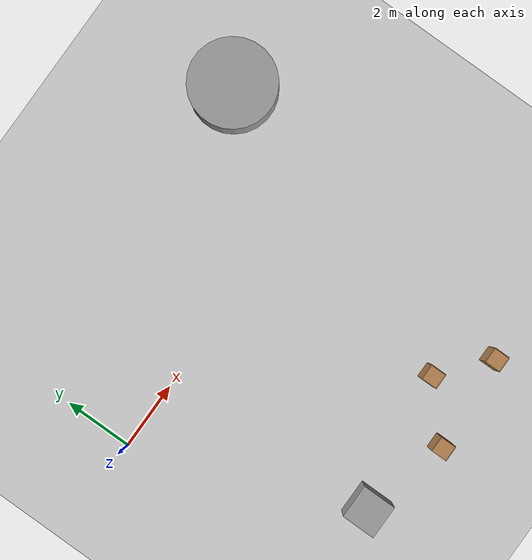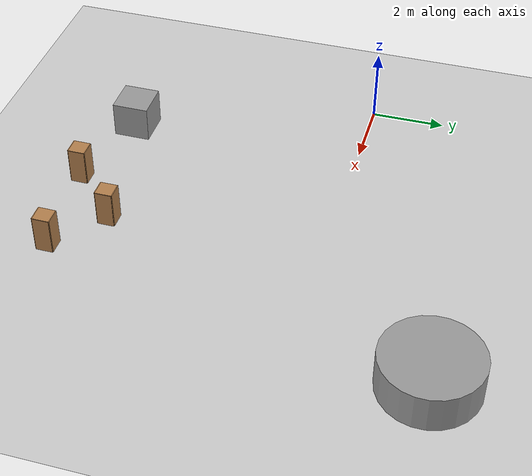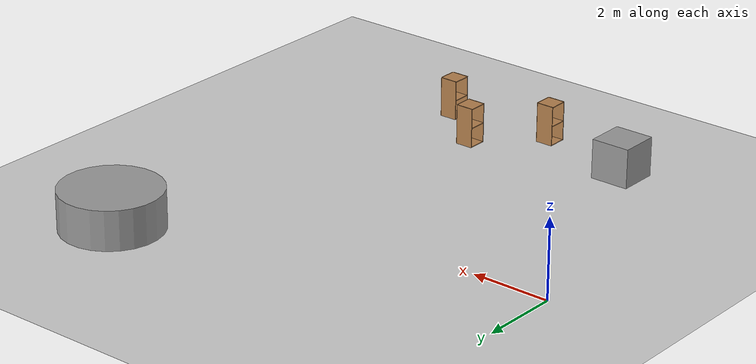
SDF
<sdf version="1.7">
 <world name="default">
  <model name="ground_plane">
   <static>1</static>
   <link name="link">
    <collision name="collision">
     <geometry><plane><normal>0 0 1</normal><size>100 100</size></plane></geometry>
     <surface>
      <contact><collide_bitmask>65535</collide_bitmask></contact>
      <friction><ode><mu>100</mu><mu2>50</mu2></ode></friction>
     </surface>
    </collision>
    <visual name="visual">
     <cast_shadows>0</cast_shadows>
     <geometry><plane><normal>0 0 1</normal><size>100 100</size></plane></geometry>
     <material>
      <script><uri>file://media/materials/scripts/gazebo.material</uri><name>Gazebo/Grey</name></script>
     </material>
    </visual>
   </link>
  </model>
  <model name="unit_box_0">
   <pose>2.50056 -6.38021 0.499995 0 1e-05 0</pose>
   <link name="link">
    <inertial>
     <mass>1</mass>
     <inertia>
      <ixx>0.166667</ixx>
      <ixy>0</ixy>
      <ixz>0</ixz>
      <iyy>0.166667</iyy>
      <iyz>0</iyz>
      <izz>0.166667</izz>
     </inertia>
    </inertial>
    <collision name="collision"><geometry><box><size>1 1 1</size></box></geometry></collision>
    <visual name="visual">
     <geometry><box><size>1 1 1</size></box></geometry>
     <material>
      <script><name>Gazebo/Grey</name><uri>file://media/materials/scripts/gazebo.material</uri></script>
     </material>
    </visual>
   </link>
  </model>
  <model name="unit_cylinder">
   <pose>9.7926 3.3959 0.49999 -8e-06 6e-06 3.00843</pose>
   <link name="link">
    <inertial>
     <mass>1</mass>
     <inertia><ixx>0.145833</ixx><ixy>0</ixy><ixz>0</ixz><iyy>0.145833</iyy><iyz>0</iyz><izz>0.125</izz></inertia>
    </inertial>
    <collision name="collision">
     <geometry><cylinder><radius>1.27016</radius><length>1</length></cylinder></geometry>
    </collision>
    <visual name="visual">
     <geometry><cylinder><radius>1.27016</radius><length>1</length></cylinder></geometry>
     <material>
      <script><name>Gazebo/Grey</name><uri>file://media/materials/scripts/gazebo.material</uri></script>
     </material>
    </visual>
   </link>
  </model>
  <model name="cabinet">
   <static>1</static>
   <link name="cabinet_bottom_plate">
    <inertial>
     <pose>0 0 -1 0 -0 0</pose>
     <inertia><ixx>2.05</ixx><ixy>0</ixy><ixz>0</ixz><iyy>2.05</iyy><iyz>0</iyz><izz>2.05</izz></inertia>
     <mass>25</mass>
    </inertial>
    <collision name="cabinet_bottom_plate_geom">
     <pose>0 0 0.01 0 -0 0</pose>
     <geometry><box><size>0.45 0.45 0.02</size></box></geometry>
    </collision>
    <visual name="cabinet_bottom_plate_geom_visual">
     <pose>0 0 0.01 0 -0 0</pose>
     <geometry><box><size>0.45 0.45 0.02</size></box></geometry>
     <material>
      <script><uri>file://media/materials/scripts/gazebo.material</uri><name>Gazebo/Wood</name></script>
     </material>
    </visual>
    <collision name="cabinet_bottom_plate_geom_cabinet_back_plate">
     <pose>0.235 0 0.51 0 -0 0</pose>
     <geometry><box><size>0.02 0.45 1.02</size></box></geometry>
    </collision>
    <visual name="cabinet_bottom_plate_geom_cabinet_back_plate_visual">
     <pose>0.235 0 0.51 0 -0 0</pose>
     <geometry><box><size>0.02 0.45 1.02</size></box></geometry>
     <material>
      <script><uri>file://media/materials/scripts/gazebo.material</uri><name>Gazebo/Wood</name></script>
     </material>
    </visual>
    <collision name="cabinet_bottom_plate_geom_cabinet_left_plate">
     <pose>0 0.235 0.51 0 -0 0</pose>
     <geometry><box><size>0.45 0.02 1.02</size></box></geometry>
    </collision>
    <visual name="cabinet_bottom_plate_geom_cabinet_left_plate_visual">
     <pose>0 0.235 0.51 0 -0 0</pose>
     <geometry><box><size>0.45 0.02 1.02</size></box></geometry>
     <material>
      <script><uri>file://media/materials/scripts/gazebo.material</uri><name>Gazebo/Wood</name></script>
     </material>
    </visual>
    <collision name="cabinet_bottom_plate_geom_cabinet_middle_plate">
     <pose>0 0 0.51 0 -0 0</pose>
     <geometry><box><size>0.45 0.45 0.02</size></box></geometry>
    </collision>
    <visual name="cabinet_bottom_plate_geom_cabinet_middle_plate_visual">
     <pose>0 0 0.51 0 -0 0</pose>
     <geometry><box><size>0.45 0.45 0.02</size></box></geometry>
     <material>
      <script><uri>file://media/materials/scripts/gazebo.material</uri><name>Gazebo/Wood</name></script>
     </material>
    </visual>
    <collision name="cabinet_bottom_plate_geom_cabinet_right_plate">
     <pose>0 -0.235 0.51 0 -0 0</pose>
     <geometry><box><size>0.45 0.02 1.02</size></box></geometry>
    </collision>
    <visual name="cabinet_bottom_plate_geom_cabinet_right_plate_visual">
     <pose>0 -0.235 0.51 0 -0 0</pose>
     <geometry><box><size>0.45 0.02 1.02</size></box></geometry>
     <material>
      <script><uri>file://media/materials/scripts/gazebo.material</uri><name>Gazebo/Wood</name></script>
     </material>
    </visual>
    <collision name="cabinet_bottom_plate_geom_cabinet_top_plate">
     <pose>0 0 1.01 0 -0 0</pose>
     <geometry><box><size>0.45 0.45 0.02</size></box></geometry>
    </collision>
    <visual name="cabinet_bottom_plate_geom_cabinet_top_plate_visual">
     <pose>0 0 1.01 0 -0 0</pose>
     <geometry><box><size>0.45 0.45 0.02</size></box></geometry>
     <material>
      <script><uri>file://media/materials/scripts/gazebo.material</uri><name>Gazebo/Wood</name></script>
     </material>
    </visual>
   </link>
   <pose>5.05863 -7.02931 0 0 -0 0</pose>
  </model>
  <model name="cabinet_clone">
   <static>1</static>
   <link name="cabinet_bottom_plate">
    <inertial>
     <pose>0 0 -1 0 -0 0</pose>
     <inertia><ixx>2.05</ixx><ixy>0</ixy><ixz>0</ixz><iyy>2.05</iyy><iyz>0</iyz><izz>2.05</izz></inertia>
     <mass>25</mass>
    </inertial>
    <collision name="cabinet_bottom_plate_geom">
     <pose>0 0 0.01 0 -0 0</pose>
     <geometry><box><size>0.45 0.45 0.02</size></box></geometry>
    </collision>
    <visual name="cabinet_bottom_plate_geom_visual">
     <pose>0 0 0.01 0 -0 0</pose>
     <geometry><box><size>0.45 0.45 0.02</size></box></geometry>
     <material>
      <script><uri>file://media/materials/scripts/gazebo.material</uri><name>Gazebo/Wood</name></script>
     </material>
    </visual>
    <collision name="cabinet_bottom_plate_geom_cabinet_back_plate">
     <pose>0.235 0 0.51 0 -0 0</pose>
     <geometry><box><size>0.02 0.45 1.02</size></box></geometry>
    </collision>
    <visual name="cabinet_bottom_plate_geom_cabinet_back_plate_visual">
     <pose>0.235 0 0.51 0 -0 0</pose>
     <geometry><box><size>0.02 0.45 1.02</size></box></geometry>
     <material>
      <script><uri>file://media/materials/scripts/gazebo.material</uri><name>Gazebo/Wood</name></script>
     </material>
    </visual>
    <collision name="cabinet_bottom_plate_geom_cabinet_left_plate">
     <pose>0 0.235 0.51 0 -0 0</pose>
     <geometry><box><size>0.45 0.02 1.02</size></box></geometry>
    </collision>
    <visual name="cabinet_bottom_plate_geom_cabinet_left_plate_visual">
     <pose>0 0.235 0.51 0 -0 0</pose>
     <geometry><box><size>0.45 0.02 1.02</size></box></geometry>
     <material>
      <script><uri>file://media/materials/scripts/gazebo.material</uri><name>Gazebo/Wood</name></script>
     </material>
    </visual>
    <collision name="cabinet_bottom_plate_geom_cabinet_middle_plate">
     <pose>0 0 0.51 0 -0 0</pose>
     <geometry><box><size>0.45 0.45 0.02</size></box></geometry>
    </collision>
    <visual name="cabinet_bottom_plate_geom_cabinet_middle_plate_visual">
     <pose>0 0 0.51 0 -0 0</pose>
     <geometry><box><size>0.45 0.45 0.02</size></box></geometry>
     <material>
      <script><uri>file://media/materials/scripts/gazebo.material</uri><name>Gazebo/Wood</name></script>
     </material>
    </visual>
    <collision name="cabinet_bottom_plate_geom_cabinet_right_plate">
     <pose>0 -0.235 0.51 0 -0 0</pose>
     <geometry><box><size>0.45 0.02 1.02</size></box></geometry>
    </collision>
    <visual name="cabinet_bottom_plate_geom_cabinet_right_plate_visual">
     <pose>0 -0.235 0.51 0 -0 0</pose>
     <geometry><box><size>0.45 0.02 1.02</size></box></geometry>
     <material>
      <script><uri>file://media/materials/scripts/gazebo.material</uri><name>Gazebo/Wood</name></script>
     </material>
    </visual>
    <collision name="cabinet_bottom_plate_geom_cabinet_top_plate">
     <pose>0 0 1.01 0 -0 0</pose>
     <geometry><box><size>0.45 0.45 0.02</size></box></geometry>
    </collision>
    <visual name="cabinet_bottom_plate_geom_cabinet_top_plate_visual">
     <pose>0 0 1.01 0 -0 0</pose>
     <geometry><box><size>0.45 0.45 0.02</size></box></geometry>
     <material>
      <script><uri>file://media/materials/scripts/gazebo.material</uri><name>Gazebo/Wood</name></script>
     </material>
    </visual>
   </link>
   <pose>6.48832 -5.68222 0 0 -0 0</pose>
  </model>
  <model name="cabinet_clone_0">
   <static>1</static>
   <link name="cabinet_bottom_plate">
    <inertial>
     <pose>0 0 -1 0 -0 0</pose>
     <inertia><ixx>2.05</ixx><ixy>0</ixy><ixz>0</ixz><iyy>2.05</iyy><iyz>0</iyz><izz>2.05</izz></inertia>
     <mass>25</mass>
    </inertial>
    <collision name="cabinet_bottom_plate_geom">
     <pose>0 0 0.01 0 -0 0</pose>
     <geometry><box><size>0.45 0.45 0.02</size></box></geometry>
    </collision>
    <visual name="cabinet_bottom_plate_geom_visual">
     <pose>0 0 0.01 0 -0 0</pose>
     <geometry><box><size>0.45 0.45 0.02</size></box></geometry>
     <material>
      <script><uri>file://media/materials/scripts/gazebo.material</uri><name>Gazebo/Wood</name></script>
     </material>
    </visual>
    <collision name="cabinet_bottom_plate_geom_cabinet_back_plate">
     <pose>0.235 0 0.51 0 -0 0</pose>
     <geometry><box><size>0.02 0.45 1.02</size></box></geometry>
    </collision>
    <visual name="cabinet_bottom_plate_geom_cabinet_back_plate_visual">
     <pose>0.235 0 0.51 0 -0 0</pose>
     <geometry><box><size>0.02 0.45 1.02</size></box></geometry>
     <material>
      <script><uri>file://media/materials/scripts/gazebo.material</uri><name>Gazebo/Wood</name></script>
     </material>
    </visual>
    <collision name="cabinet_bottom_plate_geom_cabinet_left_plate">
     <pose>0 0.235 0.51 0 -0 0</pose>
     <geometry><box><size>0.45 0.02 1.02</size></box></geometry>
    </collision>
    <visual name="cabinet_bottom_plate_geom_cabinet_left_plate_visual">
     <pose>0 0.235 0.51 0 -0 0</pose>
     <geometry><box><size>0.45 0.02 1.02</size></box></geometry>
     <material>
      <script><uri>file://media/materials/scripts/gazebo.material</uri><name>Gazebo/Wood</name></script>
     </material>
    </visual>
    <collision name="cabinet_bottom_plate_geom_cabinet_middle_plate">
     <pose>0 0 0.51 0 -0 0</pose>
     <geometry><box><size>0.45 0.45 0.02</size></box></geometry>
    </collision>
    <visual name="cabinet_bottom_plate_geom_cabinet_middle_plate_visual">
     <pose>0 0 0.51 0 -0 0</pose>
     <geometry><box><size>0.45 0.45 0.02</size></box></geometry>
     <material>
      <script><uri>file://media/materials/scripts/gazebo.material</uri><name>Gazebo/Wood</name></script>
     </material>
    </visual>
    <collision name="cabinet_bottom_plate_geom_cabinet_right_plate">
     <pose>0 -0.235 0.51 0 -0 0</pose>
     <geometry><box><size>0.45 0.02 1.02</size></box></geometry>
    </collision>
    <visual name="cabinet_bottom_plate_geom_cabinet_right_plate_visual">
     <pose>0 -0.235 0.51 0 -0 0</pose>
     <geometry><box><size>0.45 0.02 1.02</size></box></geometry>
     <material>
      <script><uri>file://media/materials/scripts/gazebo.material</uri><name>Gazebo/Wood</name></script>
     </material>
    </visual>
    <collision name="cabinet_bottom_plate_geom_cabinet_top_plate">
     <pose>0 0 1.01 0 -0 0</pose>
     <geometry><box><size>0.45 0.45 0.02</size></box></geometry>
    </collision>
    <visual name="cabinet_bottom_plate_geom_cabinet_top_plate_visual">
     <pose>0 0 1.01 0 -0 0</pose>
     <geometry><box><size>0.45 0.45 0.02</size></box></geometry>
     <material>
      <script><uri>file://media/materials/scripts/gazebo.material</uri><name>Gazebo/Wood</name></script>
     </material>
    </visual>
   </link>
   <pose>7.85752 -6.81067 0 0 -0 0</pose>
  </model>
 </world>
</sdf>
